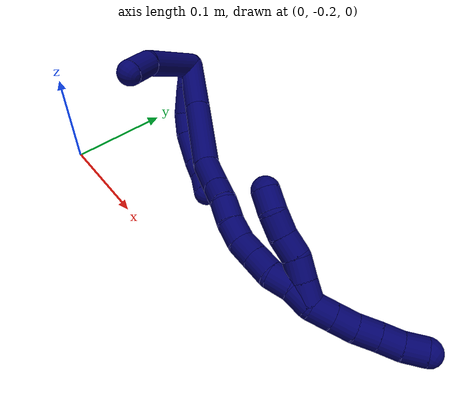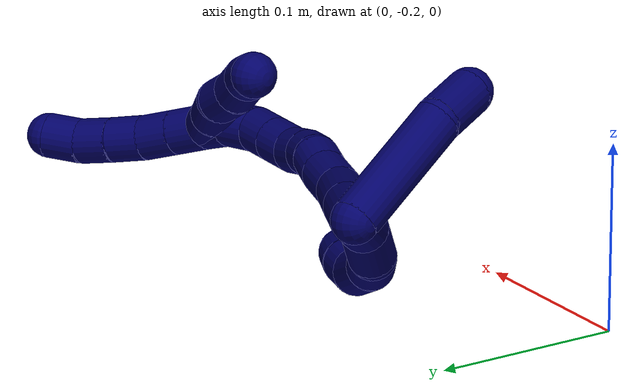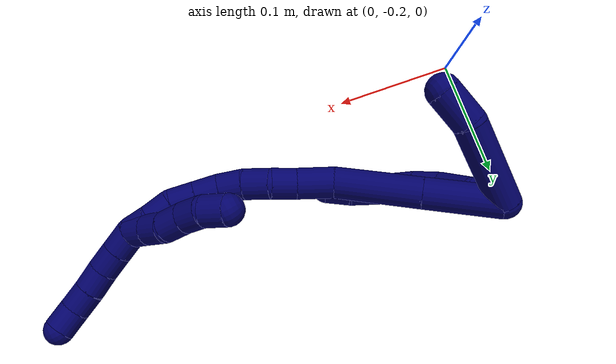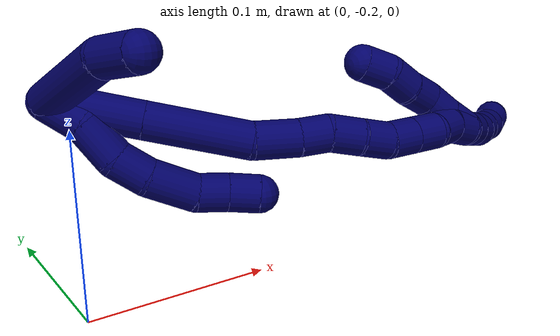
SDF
<sdf version="1.7">
 <world name="default">
  <model name="7">
   <static>0</static>
   <link name="7">
    <collision name="collision-cylinder-e_1_2_8">
     <pose>0.001255 -0.01091 0.007353 0.977749 0.095088 0.050609</pose>
     <geometry><cylinder><radius>0.0125</radius><length>0.026432</length></cylinder></geometry>
     <surface>
      <friction><ode><mu>1.16</mu><mu2>1.16</mu2><slip1>0</slip1><slip2>0</slip2></ode></friction>
      <contact><ode><kp>1e+06</kp><kd>1</kd><max_vel>0</max_vel><min_depth>0.001</min_depth></ode></contact>
     </surface>
    </collision>
    <visual name="visual-cylinder-e_1_2_8">
     <pose>0.001255 -0.01091 0.007353 0.977749 0.095088 0.050609</pose>
     <geometry><cylinder><radius>0.0125</radius><length>0.026432</length></cylinder></geometry>
     <material><ambient>0.003922 0 0.403922 1</ambient></material>
    </visual>
    <collision name="collision-cylinder-e_2_8_9">
     <pose>0.008271 -0.03323 0.02059 1.09468 0.421818 0.259492</pose>
     <geometry><cylinder><radius>0.0125</radius><length>0.028145</length></cylinder></geometry>
     <surface>
      <friction><ode><mu>1.16</mu><mu2>1.16</mu2><slip1>0</slip1><slip2>0</slip2></ode></friction>
      <contact><ode><kp>1e+06</kp><kd>1</kd><max_vel>0</max_vel><min_depth>0.001</min_depth></ode></contact>
     </surface>
    </collision>
    <visual name="visual-cylinder-e_2_8_9">
     <pose>0.008271 -0.03323 0.02059 1.09468 0.421818 0.259492</pose>
     <geometry><cylinder><radius>0.0125</radius><length>0.028145</length></cylinder></geometry>
     <material><ambient>0.003922 0 0.403922 1</ambient></material>
    </visual>
    <collision name="collision-cylinder-e_3_9_10">
     <pose>0.016535 -0.052453 0.034034 0.801766 0.226291 0.096247</pose>
     <geometry><cylinder><radius>0.0125</radius><length>0.022308</length></cylinder></geometry>
     <surface>
      <friction><ode><mu>1.16</mu><mu2>1.16</mu2><slip1>0</slip1><slip2>0</slip2></ode></friction>
      <contact><ode><kp>1e+06</kp><kd>1</kd><max_vel>0</max_vel><min_depth>0.001</min_depth></ode></contact>
     </surface>
    </collision>
    <visual name="visual-cylinder-e_3_9_10">
     <pose>0.016535 -0.052453 0.034034 0.801766 0.226291 0.096247</pose>
     <geometry><cylinder><radius>0.0125</radius><length>0.022308</length></cylinder></geometry>
     <material><ambient>0.003922 0 0.403922 1</ambient></material>
    </visual>
    <collision name="collision-cylinder-e_4_10_11">
     <pose>0.021309 -0.069119 0.054995 0.583924 0.140455 0.042277</pose>
     <geometry><cylinder><radius>0.0125</radius><length>0.032447</length></cylinder></geometry>
     <surface>
      <friction><ode><mu>1.16</mu><mu2>1.16</mu2><slip1>0</slip1><slip2>0</slip2></ode></friction>
      <contact><ode><kp>1e+06</kp><kd>1</kd><max_vel>0</max_vel><min_depth>0.001</min_depth></ode></contact>
     </surface>
    </collision>
    <visual name="visual-cylinder-e_4_10_11">
     <pose>0.021309 -0.069119 0.054995 0.583924 0.140455 0.042277</pose>
     <geometry><cylinder><radius>0.0125</radius><length>0.032447</length></cylinder></geometry>
     <material><ambient>0.003922 0 0.403922 1</ambient></material>
    </visual>
    <collision name="collision-cylinder-e_5_11_12">
     <pose>0.021899 -0.082218 0.077436 0.438849 -0.166796 -0.03728</pose>
     <geometry><cylinder><radius>0.0125</radius><length>0.020251</length></cylinder></geometry>
     <surface>
      <friction><ode><mu>1.16</mu><mu2>1.16</mu2><slip1>0</slip1><slip2>0</slip2></ode></friction>
      <contact><ode><kp>1e+06</kp><kd>1</kd><max_vel>0</max_vel><min_depth>0.001</min_depth></ode></contact>
     </surface>
    </collision>
    <visual name="visual-cylinder-e_5_11_12">
     <pose>0.021899 -0.082218 0.077436 0.438849 -0.166796 -0.03728</pose>
     <geometry><cylinder><radius>0.0125</radius><length>0.020251</length></cylinder></geometry>
     <material><ambient>0.003922 0 0.403922 1</ambient></material>
    </visual>
    <collision name="collision-cylinder-e_6_12_6">
     <pose>0.018152 -0.091956 0.094826 0.582081 -0.203776 -0.061233</pose>
     <geometry><cylinder><radius>0.0125</radius><length>0.020417</length></cylinder></geometry>
     <surface>
      <friction><ode><mu>1.16</mu><mu2>1.16</mu2><slip1>0</slip1><slip2>0</slip2></ode></friction>
      <contact><ode><kp>1e+06</kp><kd>1</kd><max_vel>0</max_vel><min_depth>0.001</min_depth></ode></contact>
     </surface>
    </collision>
    <visual name="visual-cylinder-e_6_12_6">
     <pose>0.018152 -0.091956 0.094826 0.582081 -0.203776 -0.061233</pose>
     <geometry><cylinder><radius>0.0125</radius><length>0.020417</length></cylinder></geometry>
     <material><ambient>0.003922 0 0.403922 1</ambient></material>
    </visual>
    <collision name="collision-cylinder-e_1_2_13">
     <pose>-0.030049 -0.018278 0.002309 1.44514 -1.02079 -0.917036</pose>
     <geometry><cylinder><radius>0.0125</radius><length>0.070495</length></cylinder></geometry>
     <surface>
      <friction><ode><mu>1.16</mu><mu2>1.16</mu2><slip1>0</slip1><slip2>0</slip2></ode></friction>
      <contact><ode><kp>1e+06</kp><kd>1</kd><max_vel>0</max_vel><min_depth>0.001</min_depth></ode></contact>
     </surface>
    </collision>
    <visual name="visual-cylinder-e_1_2_13">
     <pose>-0.030049 -0.018278 0.002309 1.44514 -1.02079 -0.917036</pose>
     <geometry><cylinder><radius>0.0125</radius><length>0.070495</length></cylinder></geometry>
     <material><ambient>0.003922 0 0.403922 1</ambient></material>
    </visual>
    <collision name="collision-cylinder-e_2_13_5">
     <pose>-0.069704 -0.047209 0.008069 1.25746 -0.709018 -0.525856</pose>
     <geometry><cylinder><radius>0.0125</radius><length>0.029505</length></cylinder></geometry>
     <surface>
      <friction><ode><mu>1.16</mu><mu2>1.16</mu2><slip1>0</slip1><slip2>0</slip2></ode></friction>
      <contact><ode><kp>1e+06</kp><kd>1</kd><max_vel>0</max_vel><min_depth>0.001</min_depth></ode></contact>
     </surface>
    </collision>
    <visual name="visual-cylinder-e_2_13_5">
     <pose>-0.069704 -0.047209 0.008069 1.25746 -0.709018 -0.525856</pose>
     <geometry><cylinder><radius>0.0125</radius><length>0.029505</length></cylinder></geometry>
     <material><ambient>0.003922 0 0.403922 1</ambient></material>
    </visual>
    <collision name="collision-cylinder-e_1_2_14">
     <pose>-0.003101 -0.018087 0.02306 0.665129 -0.105431 -0.036445</pose>
     <geometry><cylinder><radius>0.0125</radius><length>0.058942</length></cylinder></geometry>
     <surface>
      <friction><ode><mu>1.16</mu><mu2>1.16</mu2><slip1>0</slip1><slip2>0</slip2></ode></friction>
      <contact><ode><kp>1e+06</kp><kd>1</kd><max_vel>0</max_vel><min_depth>0.001</min_depth></ode></contact>
     </surface>
    </collision>
    <visual name="visual-cylinder-e_1_2_14">
     <pose>-0.003101 -0.018087 0.02306 0.665129 -0.105431 -0.036445</pose>
     <geometry><cylinder><radius>0.0125</radius><length>0.058942</length></cylinder></geometry>
     <material><ambient>0.003922 0 0.403922 1</ambient></material>
    </visual>
    <collision name="collision-cylinder-e_2_14_15">
     <pose>-0.009968 -0.057183 0.072725 0.668407 -0.11061 -0.038441</pose>
     <geometry><cylinder><radius>0.0125</radius><length>0.068215</length></cylinder></geometry>
     <surface>
      <friction><ode><mu>1.16</mu><mu2>1.16</mu2><slip1>0</slip1><slip2>0</slip2></ode></friction>
      <contact><ode><kp>1e+06</kp><kd>1</kd><max_vel>0</max_vel><min_depth>0.001</min_depth></ode></contact>
     </surface>
    </collision>
    <visual name="visual-cylinder-e_2_14_15">
     <pose>-0.009968 -0.057183 0.072725 0.668407 -0.11061 -0.038441</pose>
     <geometry><cylinder><radius>0.0125</radius><length>0.068215</length></cylinder></geometry>
     <material><ambient>0.003922 0 0.403922 1</ambient></material>
    </visual>
    <collision name="collision-cylinder-e_3_15_16">
     <pose>-0.017049 -0.084009 0.112821 0.407113 -0.222007 -0.046007</pose>
     <geometry><cylinder><radius>0.0125</radius><length>0.030125</length></cylinder></geometry>
     <surface>
      <friction><ode><mu>1.16</mu><mu2>1.16</mu2><slip1>0</slip1><slip2>0</slip2></ode></friction>
      <contact><ode><kp>1e+06</kp><kd>1</kd><max_vel>0</max_vel><min_depth>0.001</min_depth></ode></contact>
     </surface>
    </collision>
    <visual name="visual-cylinder-e_3_15_16">
     <pose>-0.017049 -0.084009 0.112821 0.407113 -0.222007 -0.046007</pose>
     <geometry><cylinder><radius>0.0125</radius><length>0.030125</length></cylinder></geometry>
     <material><ambient>0.003922 0 0.403922 1</ambient></material>
    </visual>
    <collision name="collision-cylinder-e_4_16_17">
     <pose>-0.023581 -0.09336 0.135233 0.377106 -0.32332 -0.062219</pose>
     <geometry><cylinder><radius>0.0125</radius><length>0.020236</length></cylinder></geometry>
     <surface>
      <friction><ode><mu>1.16</mu><mu2>1.16</mu2><slip1>0</slip1><slip2>0</slip2></ode></friction>
      <contact><ode><kp>1e+06</kp><kd>1</kd><max_vel>0</max_vel><min_depth>0.001</min_depth></ode></contact>
     </surface>
    </collision>
    <visual name="visual-cylinder-e_4_16_17">
     <pose>-0.023581 -0.09336 0.135233 0.377106 -0.32332 -0.062219</pose>
     <geometry><cylinder><radius>0.0125</radius><length>0.020236</length></cylinder></geometry>
     <material><ambient>0.003922 0 0.403922 1</ambient></material>
    </visual>
    <collision name="collision-cylinder-e_5_17_18">
     <pose>-0.027576 -0.102323 0.153478 0.52732 -0.072203 -0.019499</pose>
     <geometry><cylinder><radius>0.0125</radius><length>0.021638</length></cylinder></geometry>
     <surface>
      <friction><ode><mu>1.16</mu><mu2>1.16</mu2><slip1>0</slip1><slip2>0</slip2></ode></friction>
      <contact><ode><kp>1e+06</kp><kd>1</kd><max_vel>0</max_vel><min_depth>0.001</min_depth></ode></contact>
     </surface>
    </collision>
    <visual name="visual-cylinder-e_5_17_18">
     <pose>-0.027576 -0.102323 0.153478 0.52732 -0.072203 -0.019499</pose>
     <geometry><cylinder><radius>0.0125</radius><length>0.021638</length></cylinder></geometry>
     <material><ambient>0.003922 0 0.403922 1</ambient></material>
    </visual>
    <collision name="collision-cylinder-e_6_18_19">
     <pose>-0.028078 -0.111631 0.172244 0.389747 0.027276 0.005384</pose>
     <geometry><cylinder><radius>0.0125</radius><length>0.020421</length></cylinder></geometry>
     <surface>
      <friction><ode><mu>1.16</mu><mu2>1.16</mu2><slip1>0</slip1><slip2>0</slip2></ode></friction>
      <contact><ode><kp>1e+06</kp><kd>1</kd><max_vel>0</max_vel><min_depth>0.001</min_depth></ode></contact>
     </surface>
    </collision>
    <visual name="visual-cylinder-e_6_18_19">
     <pose>-0.028078 -0.111631 0.172244 0.389747 0.027276 0.005384</pose>
     <geometry><cylinder><radius>0.0125</radius><length>0.020421</length></cylinder></geometry>
     <material><ambient>0.003922 0 0.403922 1</ambient></material>
    </visual>
    <collision name="collision-cylinder-e_7_19_20">
     <pose>-0.029026 -0.116855 0.191545 0.135673 -0.122609 -0.008341</pose>
     <geometry><cylinder><radius>0.0125</radius><length>0.020052</length></cylinder></geometry>
     <surface>
      <friction><ode><mu>1.16</mu><mu2>1.16</mu2><slip1>0</slip1><slip2>0</slip2></ode></friction>
      <contact><ode><kp>1e+06</kp><kd>1</kd><max_vel>0</max_vel><min_depth>0.001</min_depth></ode></contact>
     </surface>
    </collision>
    <visual name="visual-cylinder-e_7_19_20">
     <pose>-0.029026 -0.116855 0.191545 0.135673 -0.122609 -0.008341</pose>
     <geometry><cylinder><radius>0.0125</radius><length>0.020052</length></cylinder></geometry>
     <material><ambient>0.003922 0 0.403922 1</ambient></material>
    </visual>
    <collision name="collision-cylinder-e_8_20_21">
     <pose>-0.031511 -0.119579 0.211392 0.137021 -0.124273 -0.008538</pose>
     <geometry><cylinder><radius>0.0125</radius><length>0.02032</length></cylinder></geometry>
     <surface>
      <friction><ode><mu>1.16</mu><mu2>1.16</mu2><slip1>0</slip1><slip2>0</slip2></ode></friction>
      <contact><ode><kp>1e+06</kp><kd>1</kd><max_vel>0</max_vel><min_depth>0.001</min_depth></ode></contact>
     </surface>
    </collision>
    <visual name="visual-cylinder-e_8_20_21">
     <pose>-0.031511 -0.119579 0.211392 0.137021 -0.124273 -0.008538</pose>
     <geometry><cylinder><radius>0.0125</radius><length>0.02032</length></cylinder></geometry>
     <material><ambient>0.003922 0 0.403922 1</ambient></material>
    </visual>
    <collision name="collision-cylinder-e_9_21_22">
     <pose>-0.032046 -0.119564 0.231261 -0.139869 0.072506 -0.005081</pose>
     <geometry><cylinder><radius>0.0125</radius><length>0.020011</length></cylinder></geometry>
     <surface>
      <friction><ode><mu>1.16</mu><mu2>1.16</mu2><slip1>0</slip1><slip2>0</slip2></ode></friction>
      <contact><ode><kp>1e+06</kp><kd>1</kd><max_vel>0</max_vel><min_depth>0.001</min_depth></ode></contact>
     </surface>
    </collision>
    <visual name="visual-cylinder-e_9_21_22">
     <pose>-0.032046 -0.119564 0.231261 -0.139869 0.072506 -0.005081</pose>
     <geometry><cylinder><radius>0.0125</radius><length>0.020011</length></cylinder></geometry>
     <material><ambient>0.003922 0 0.403922 1</ambient></material>
    </visual>
    <collision name="collision-cylinder-e_10_22_1">
     <pose>-0.028739 -0.119316 0.250756 0.118296 0.260669 0.015524</pose>
     <geometry><cylinder><radius>0.0125</radius><length>0.020038</length></cylinder></geometry>
     <surface>
      <friction><ode><mu>1.16</mu><mu2>1.16</mu2><slip1>0</slip1><slip2>0</slip2></ode></friction>
      <contact><ode><kp>1e+06</kp><kd>1</kd><max_vel>0</max_vel><min_depth>0.001</min_depth></ode></contact>
     </surface>
    </collision>
    <visual name="visual-cylinder-e_10_22_1">
     <pose>-0.028739 -0.119316 0.250756 0.118296 0.260669 0.015524</pose>
     <geometry><cylinder><radius>0.0125</radius><length>0.020038</length></cylinder></geometry>
     <material><ambient>0.003922 0 0.403922 1</ambient></material>
    </visual>
    <collision name="collision-cylinder-e_1_1_23">
     <pose>-0.029503 -0.114772 0.252854 -2.49381 -0.341229 0.948302</pose>
     <geometry><cylinder><radius>0.0125</radius><length>0.02</length></cylinder></geometry>
     <surface>
      <friction><ode><mu>1.16</mu><mu2>1.16</mu2><slip1>0</slip1><slip2>0</slip2></ode></friction>
      <contact><ode><kp>1e+06</kp><kd>1</kd><max_vel>0</max_vel><min_depth>0.001</min_depth></ode></contact>
     </surface>
    </collision>
    <visual name="visual-cylinder-e_1_1_23">
     <pose>-0.029503 -0.114772 0.252854 -2.49381 -0.341229 0.948302</pose>
     <geometry><cylinder><radius>0.0125</radius><length>0.02</length></cylinder></geometry>
     <material><ambient>0.003922 0 0.403922 1</ambient></material>
    </visual>
    <collision name="collision-cylinder-e_2_23_24">
     <pose>-0.036658 -0.103184 0.238222 -2.44938 -0.390731 1.00375</pose>
     <geometry><cylinder><radius>0.0125</radius><length>0.02</length></cylinder></geometry>
     <surface>
      <friction><ode><mu>1.16</mu><mu2>1.16</mu2><slip1>0</slip1><slip2>0</slip2></ode></friction>
      <contact><ode><kp>1e+06</kp><kd>1</kd><max_vel>0</max_vel><min_depth>0.001</min_depth></ode></contact>
     </surface>
    </collision>
    <visual name="visual-cylinder-e_2_23_24">
     <pose>-0.036658 -0.103184 0.238222 -2.44938 -0.390731 1.00375</pose>
     <geometry><cylinder><radius>0.0125</radius><length>0.02</length></cylinder></geometry>
     <material><ambient>0.003922 0 0.403922 1</ambient></material>
    </visual>
    <collision name="collision-cylinder-e_3_24_25">
     <pose>-0.044085 -0.094062 0.222355 -2.78881 -0.370177 1.61998</pose>
     <geometry><cylinder><radius>0.0125</radius><length>0.02</length></cylinder></geometry>
     <surface>
      <friction><ode><mu>1.16</mu><mu2>1.16</mu2><slip1>0</slip1><slip2>0</slip2></ode></friction>
      <contact><ode><kp>1e+06</kp><kd>1</kd><max_vel>0</max_vel><min_depth>0.001</min_depth></ode></contact>
     </surface>
    </collision>
    <visual name="visual-cylinder-e_3_24_25">
     <pose>-0.044085 -0.094062 0.222355 -2.78881 -0.370177 1.61998</pose>
     <geometry><cylinder><radius>0.0125</radius><length>0.02</length></cylinder></geometry>
     <material><ambient>0.003922 0 0.403922 1</ambient></material>
    </visual>
    <collision name="collision-cylinder-e_4_25_26">
     <pose>-0.051828 -0.086123 0.205813 -2.59726 -0.425212 1.31671</pose>
     <geometry><cylinder><radius>0.0125</radius><length>0.02</length></cylinder></geometry>
     <surface>
      <friction><ode><mu>1.16</mu><mu2>1.16</mu2><slip1>0</slip1><slip2>0</slip2></ode></friction>
      <contact><ode><kp>1e+06</kp><kd>1</kd><max_vel>0</max_vel><min_depth>0.001</min_depth></ode></contact>
     </surface>
    </collision>
    <visual name="visual-cylinder-e_4_25_26">
     <pose>-0.051828 -0.086123 0.205813 -2.59726 -0.425212 1.31671</pose>
     <geometry><cylinder><radius>0.0125</radius><length>0.02</length></cylinder></geometry>
     <material><ambient>0.003922 0 0.403922 1</ambient></material>
    </visual>
    <collision name="collision-cylinder-e_5_26_4">
     <pose>-0.056893 -0.075905 0.189723 -2.55617 -0.094152 0.310133</pose>
     <geometry><cylinder><radius>0.0125</radius><length>0.02</length></cylinder></geometry>
     <surface>
      <friction><ode><mu>1.16</mu><mu2>1.16</mu2><slip1>0</slip1><slip2>0</slip2></ode></friction>
      <contact><ode><kp>1e+06</kp><kd>1</kd><max_vel>0</max_vel><min_depth>0.001</min_depth></ode></contact>
     </surface>
    </collision>
    <visual name="visual-cylinder-e_5_26_4">
     <pose>-0.056893 -0.075905 0.189723 -2.55617 -0.094152 0.310133</pose>
     <geometry><cylinder><radius>0.0125</radius><length>0.02</length></cylinder></geometry>
     <material><ambient>0.003922 0 0.403922 1</ambient></material>
    </visual>
    <collision name="collision-cylinder-e_1_1_27">
     <pose>-0.022213 -0.118501 0.269347 -0.214654 0.405431 -0.044283</pose>
     <geometry><cylinder><radius>0.0125</radius><length>0.02</length></cylinder></geometry>
     <surface>
      <friction><ode><mu>1.16</mu><mu2>1.16</mu2><slip1>0</slip1><slip2>0</slip2></ode></friction>
      <contact><ode><kp>1e+06</kp><kd>1</kd><max_vel>0</max_vel><min_depth>0.001</min_depth></ode></contact>
     </surface>
    </collision>
    <visual name="visual-cylinder-e_1_1_27">
     <pose>-0.022213 -0.118501 0.269347 -0.214654 0.405431 -0.044283</pose>
     <geometry><cylinder><radius>0.0125</radius><length>0.02</length></cylinder></geometry>
     <material><ambient>0.003922 0 0.403922 1</ambient></material>
    </visual>
    <collision name="collision-cylinder-e_2_27_28">
     <pose>-0.01432 -0.114541 0.287292 -0.219705 0.405845 -0.04538</pose>
     <geometry><cylinder><radius>0.0125</radius><length>0.02</length></cylinder></geometry>
     <surface>
      <friction><ode><mu>1.16</mu><mu2>1.16</mu2><slip1>0</slip1><slip2>0</slip2></ode></friction>
      <contact><ode><kp>1e+06</kp><kd>1</kd><max_vel>0</max_vel><min_depth>0.001</min_depth></ode></contact>
     </surface>
    </collision>
    <visual name="visual-cylinder-e_2_27_28">
     <pose>-0.01432 -0.114541 0.287292 -0.219705 0.405845 -0.04538</pose>
     <geometry><cylinder><radius>0.0125</radius><length>0.02</length></cylinder></geometry>
     <material><ambient>0.003922 0 0.403922 1</ambient></material>
    </visual>
    <collision name="collision-cylinder-e_3_28_29">
     <pose>-0.007033 -0.109299 0.305111 -0.350797 0.340507 -0.060916</pose>
     <geometry><cylinder><radius>0.0125</radius><length>0.02</length></cylinder></geometry>
     <surface>
      <friction><ode><mu>1.16</mu><mu2>1.16</mu2><slip1>0</slip1><slip2>0</slip2></ode></friction>
      <contact><ode><kp>1e+06</kp><kd>1</kd><max_vel>0</max_vel><min_depth>0.001</min_depth></ode></contact>
     </surface>
    </collision>
    <visual name="visual-cylinder-e_3_28_29">
     <pose>-0.007033 -0.109299 0.305111 -0.350797 0.340507 -0.060916</pose>
     <geometry><cylinder><radius>0.0125</radius><length>0.02</length></cylinder></geometry>
     <material><ambient>0.003922 0 0.403922 1</ambient></material>
    </visual>
    <collision name="collision-cylinder-e_4_29_30">
     <pose>-0.000702 -0.103187 0.323062 -0.305836 0.303805 -0.047177</pose>
     <geometry><cylinder><radius>0.0125</radius><length>0.02</length></cylinder></geometry>
     <surface>
      <friction><ode><mu>1.16</mu><mu2>1.16</mu2><slip1>0</slip1><slip2>0</slip2></ode></friction>
      <contact><ode><kp>1e+06</kp><kd>1</kd><max_vel>0</max_vel><min_depth>0.001</min_depth></ode></contact>
     </surface>
    </collision>
    <visual name="visual-cylinder-e_4_29_30">
     <pose>-0.000702 -0.103187 0.323062 -0.305836 0.303805 -0.047177</pose>
     <geometry><cylinder><radius>0.0125</radius><length>0.02</length></cylinder></geometry>
     <material><ambient>0.003922 0 0.403922 1</ambient></material>
    </visual>
    <collision name="collision-cylinder-e_5_30_3">
     <pose>0.003553 -0.095875 0.341032 -0.464031 0.126672 -0.029967</pose>
     <geometry><cylinder><radius>0.0125</radius><length>0.02</length></cylinder></geometry>
     <surface>
      <friction><ode><mu>1.16</mu><mu2>1.16</mu2><slip1>0</slip1><slip2>0</slip2></ode></friction>
      <contact><ode><kp>1e+06</kp><kd>1</kd><max_vel>0</max_vel><min_depth>0.001</min_depth></ode></contact>
     </surface>
    </collision>
    <visual name="visual-cylinder-e_5_30_3">
     <pose>0.003553 -0.095875 0.341032 -0.464031 0.126672 -0.029967</pose>
     <geometry><cylinder><radius>0.0125</radius><length>0.02</length></cylinder></geometry>
     <material><ambient>0.003922 0 0.403922 1</ambient></material>
    </visual>
    <collision name="collision-sphere-3">
     <pose>0.004817 -0.091435 0.349903 0 -0 0</pose>
     <geometry><sphere><radius>0.0125</radius></sphere></geometry>
     <surface>
      <friction><ode><mu>1.16</mu><mu2>1.16</mu2><slip1>0</slip1><slip2>0</slip2></ode></friction>
      <contact><ode><kp>1e+06</kp><kd>1</kd><max_vel>0</max_vel><min_depth>0.001</min_depth></ode></contact>
     </surface>
    </collision>
    <visual name="visual-sphere-3">
     <pose>0.004817 -0.091435 0.349903 0 -0 0</pose>
     <geometry><sphere><radius>0.0125</radius></sphere></geometry>
     <material><ambient>0.003922 0 0.403922 1</ambient></material>
    </visual>
    <collision name="collision-sphere-30">
     <pose>0.00229 -0.100314 0.332161 0 -0 0</pose>
     <geometry><sphere><radius>0.0125</radius></sphere></geometry>
     <surface>
      <friction><ode><mu>1.16</mu><mu2>1.16</mu2><slip1>0</slip1><slip2>0</slip2></ode></friction>
      <contact><ode><kp>1e+06</kp><kd>1</kd><max_vel>0</max_vel><min_depth>0.001</min_depth></ode></contact>
     </surface>
    </collision>
    <visual name="visual-sphere-30">
     <pose>0.00229 -0.100314 0.332161 0 -0 0</pose>
     <geometry><sphere><radius>0.0125</radius></sphere></geometry>
     <material><ambient>0.003922 0 0.403922 1</ambient></material>
    </visual>
    <collision name="collision-sphere-29">
     <pose>-0.003693 -0.10606 0.313963 0 -0 0</pose>
     <geometry><sphere><radius>0.0125</radius></sphere></geometry>
     <surface>
      <friction><ode><mu>1.16</mu><mu2>1.16</mu2><slip1>0</slip1><slip2>0</slip2></ode></friction>
      <contact><ode><kp>1e+06</kp><kd>1</kd><max_vel>0</max_vel><min_depth>0.001</min_depth></ode></contact>
     </surface>
    </collision>
    <visual name="visual-sphere-29">
     <pose>-0.003693 -0.10606 0.313963 0 -0 0</pose>
     <geometry><sphere><radius>0.0125</radius></sphere></geometry>
     <material><ambient>0.003922 0 0.403922 1</ambient></material>
    </visual>
    <collision name="collision-sphere-28">
     <pose>-0.010373 -0.112539 0.296259 0 -0 0</pose>
     <geometry><sphere><radius>0.0125</radius></sphere></geometry>
     <surface>
      <friction><ode><mu>1.16</mu><mu2>1.16</mu2><slip1>0</slip1><slip2>0</slip2></ode></friction>
      <contact><ode><kp>1e+06</kp><kd>1</kd><max_vel>0</max_vel><min_depth>0.001</min_depth></ode></contact>
     </surface>
    </collision>
    <visual name="visual-sphere-28">
     <pose>-0.010373 -0.112539 0.296259 0 -0 0</pose>
     <geometry><sphere><radius>0.0125</radius></sphere></geometry>
     <material><ambient>0.003922 0 0.403922 1</ambient></material>
    </visual>
    <collision name="collision-sphere-27">
     <pose>-0.018268 -0.116543 0.278325 0 -0 0</pose>
     <geometry><sphere><radius>0.0125</radius></sphere></geometry>
     <surface>
      <friction><ode><mu>1.16</mu><mu2>1.16</mu2><slip1>0</slip1><slip2>0</slip2></ode></friction>
      <contact><ode><kp>1e+06</kp><kd>1</kd><max_vel>0</max_vel><min_depth>0.001</min_depth></ode></contact>
     </surface>
    </collision>
    <visual name="visual-sphere-27">
     <pose>-0.018268 -0.116543 0.278325 0 -0 0</pose>
     <geometry><sphere><radius>0.0125</radius></sphere></geometry>
     <material><ambient>0.003922 0 0.403922 1</ambient></material>
    </visual>
    <collision name="collision-sphere-4">
     <pose>-0.057833 -0.070404 0.181425 0 -0 0</pose>
     <geometry><sphere><radius>0.0125</radius></sphere></geometry>
     <surface>
      <friction><ode><mu>1.16</mu><mu2>1.16</mu2><slip1>0</slip1><slip2>0</slip2></ode></friction>
      <contact><ode><kp>1e+06</kp><kd>1</kd><max_vel>0</max_vel><min_depth>0.001</min_depth></ode></contact>
     </surface>
    </collision>
    <visual name="visual-sphere-4">
     <pose>-0.057833 -0.070404 0.181425 0 -0 0</pose>
     <geometry><sphere><radius>0.0125</radius></sphere></geometry>
     <material><ambient>0.003922 0 0.403922 1</ambient></material>
    </visual>
    <collision name="collision-sphere-26">
     <pose>-0.055953 -0.081406 0.19802 0 -0 0</pose>
     <geometry><sphere><radius>0.0125</radius></sphere></geometry>
     <surface>
      <friction><ode><mu>1.16</mu><mu2>1.16</mu2><slip1>0</slip1><slip2>0</slip2></ode></friction>
      <contact><ode><kp>1e+06</kp><kd>1</kd><max_vel>0</max_vel><min_depth>0.001</min_depth></ode></contact>
     </surface>
    </collision>
    <visual name="visual-sphere-26">
     <pose>-0.055953 -0.081406 0.19802 0 -0 0</pose>
     <geometry><sphere><radius>0.0125</radius></sphere></geometry>
     <material><ambient>0.003922 0 0.403922 1</ambient></material>
    </visual>
    <collision name="collision-sphere-25">
     <pose>-0.047703 -0.090841 0.213606 0 -0 0</pose>
     <geometry><sphere><radius>0.0125</radius></sphere></geometry>
     <surface>
      <friction><ode><mu>1.16</mu><mu2>1.16</mu2><slip1>0</slip1><slip2>0</slip2></ode></friction>
      <contact><ode><kp>1e+06</kp><kd>1</kd><max_vel>0</max_vel><min_depth>0.001</min_depth></ode></contact>
     </surface>
    </collision>
    <visual name="visual-sphere-25">
     <pose>-0.047703 -0.090841 0.213606 0 -0 0</pose>
     <geometry><sphere><radius>0.0125</radius></sphere></geometry>
     <material><ambient>0.003922 0 0.403922 1</ambient></material>
    </visual>
    <collision name="collision-sphere-24">
     <pose>-0.040467 -0.097283 0.231103 0 -0 0</pose>
     <geometry><sphere><radius>0.0125</radius></sphere></geometry>
     <surface>
      <friction><ode><mu>1.16</mu><mu2>1.16</mu2><slip1>0</slip1><slip2>0</slip2></ode></friction>
      <contact><ode><kp>1e+06</kp><kd>1</kd><max_vel>0</max_vel><min_depth>0.001</min_depth></ode></contact>
     </surface>
    </collision>
    <visual name="visual-sphere-24">
     <pose>-0.040467 -0.097283 0.231103 0 -0 0</pose>
     <geometry><sphere><radius>0.0125</radius></sphere></geometry>
     <material><ambient>0.003922 0 0.403922 1</ambient></material>
    </visual>
    <collision name="collision-sphere-23">
     <pose>-0.03285 -0.109086 0.24534 0 -0 0</pose>
     <geometry><sphere><radius>0.0125</radius></sphere></geometry>
     <surface>
      <friction><ode><mu>1.16</mu><mu2>1.16</mu2><slip1>0</slip1><slip2>0</slip2></ode></friction>
      <contact><ode><kp>1e+06</kp><kd>1</kd><max_vel>0</max_vel><min_depth>0.001</min_depth></ode></contact>
     </surface>
    </collision>
    <visual name="visual-sphere-23">
     <pose>-0.03285 -0.109086 0.24534 0 -0 0</pose>
     <geometry><sphere><radius>0.0125</radius></sphere></geometry>
     <material><ambient>0.003922 0 0.403922 1</ambient></material>
    </visual>
    <collision name="collision-sphere-1">
     <pose>-0.026157 -0.120458 0.260369 0 -0 0</pose>
     <geometry><sphere><radius>0.0125</radius></sphere></geometry>
     <surface>
      <friction><ode><mu>1.16</mu><mu2>1.16</mu2><slip1>0</slip1><slip2>0</slip2></ode></friction>
      <contact><ode><kp>1e+06</kp><kd>1</kd><max_vel>0</max_vel><min_depth>0.001</min_depth></ode></contact>
     </surface>
    </collision>
    <visual name="visual-sphere-1">
     <pose>-0.026157 -0.120458 0.260369 0 -0 0</pose>
     <geometry><sphere><radius>0.0125</radius></sphere></geometry>
     <material><ambient>0.003922 0 0.403922 1</ambient></material>
    </visual>
    <collision name="collision-sphere-22">
     <pose>-0.031321 -0.118173 0.241143 0 -0 0</pose>
     <geometry><sphere><radius>0.0125</radius></sphere></geometry>
     <surface>
      <friction><ode><mu>1.16</mu><mu2>1.16</mu2><slip1>0</slip1><slip2>0</slip2></ode></friction>
      <contact><ode><kp>1e+06</kp><kd>1</kd><max_vel>0</max_vel><min_depth>0.001</min_depth></ode></contact>
     </surface>
    </collision>
    <visual name="visual-sphere-22">
     <pose>-0.031321 -0.118173 0.241143 0 -0 0</pose>
     <geometry><sphere><radius>0.0125</radius></sphere></geometry>
     <material><ambient>0.003922 0 0.403922 1</ambient></material>
    </visual>
    <collision name="collision-sphere-21">
     <pose>-0.032771 -0.120956 0.221379 0 -0 0</pose>
     <geometry><sphere><radius>0.0125</radius></sphere></geometry>
     <surface>
      <friction><ode><mu>1.16</mu><mu2>1.16</mu2><slip1>0</slip1><slip2>0</slip2></ode></friction>
      <contact><ode><kp>1e+06</kp><kd>1</kd><max_vel>0</max_vel><min_depth>0.001</min_depth></ode></contact>
     </surface>
    </collision>
    <visual name="visual-sphere-21">
     <pose>-0.032771 -0.120956 0.221379 0 -0 0</pose>
     <geometry><sphere><radius>0.0125</radius></sphere></geometry>
     <material><ambient>0.003922 0 0.403922 1</ambient></material>
    </visual>
    <collision name="collision-sphere-12">
     <pose>0.020218 -0.08646 0.086475 0 -0 0</pose>
     <geometry><sphere><radius>0.0125</radius></sphere></geometry>
     <surface>
      <friction><ode><mu>1.16</mu><mu2>1.16</mu2><slip1>0</slip1><slip2>0</slip2></ode></friction>
      <contact><ode><kp>1e+06</kp><kd>1</kd><max_vel>0</max_vel><min_depth>0.001</min_depth></ode></contact>
     </surface>
    </collision>
    <visual name="visual-sphere-12">
     <pose>0.020218 -0.08646 0.086475 0 -0 0</pose>
     <geometry><sphere><radius>0.0125</radius></sphere></geometry>
     <material><ambient>0.003922 0 0.403922 1</ambient></material>
    </visual>
    <collision name="collision-sphere-11">
     <pose>0.02358 -0.077975 0.068397 0 -0 0</pose>
     <geometry><sphere><radius>0.0125</radius></sphere></geometry>
     <surface>
      <friction><ode><mu>1.16</mu><mu2>1.16</mu2><slip1>0</slip1><slip2>0</slip2></ode></friction>
      <contact><ode><kp>1e+06</kp><kd>1</kd><max_vel>0</max_vel><min_depth>0.001</min_depth></ode></contact>
     </surface>
    </collision>
    <visual name="visual-sphere-11">
     <pose>0.02358 -0.077975 0.068397 0 -0 0</pose>
     <geometry><sphere><radius>0.0125</radius></sphere></geometry>
     <material><ambient>0.003922 0 0.403922 1</ambient></material>
    </visual>
    <collision name="collision-sphere-10">
     <pose>0.019038 -0.060263 0.041593 0 -0 0</pose>
     <geometry><sphere><radius>0.0125</radius></sphere></geometry>
     <surface>
      <friction><ode><mu>1.16</mu><mu2>1.16</mu2><slip1>0</slip1><slip2>0</slip2></ode></friction>
      <contact><ode><kp>1e+06</kp><kd>1</kd><max_vel>0</max_vel><min_depth>0.001</min_depth></ode></contact>
     </surface>
    </collision>
    <visual name="visual-sphere-10">
     <pose>0.019038 -0.060263 0.041593 0 -0 0</pose>
     <geometry><sphere><radius>0.0125</radius></sphere></geometry>
     <material><ambient>0.003922 0 0.403922 1</ambient></material>
    </visual>
    <collision name="collision-sphere-9">
     <pose>0.014033 -0.044642 0.026475 0 -0 0</pose>
     <geometry><sphere><radius>0.0125</radius></sphere></geometry>
     <surface>
      <friction><ode><mu>1.16</mu><mu2>1.16</mu2><slip1>0</slip1><slip2>0</slip2></ode></friction>
      <contact><ode><kp>1e+06</kp><kd>1</kd><max_vel>0</max_vel><min_depth>0.001</min_depth></ode></contact>
     </surface>
    </collision>
    <visual name="visual-sphere-9">
     <pose>0.014033 -0.044642 0.026475 0 -0 0</pose>
     <geometry><sphere><radius>0.0125</radius></sphere></geometry>
     <material><ambient>0.003922 0 0.403922 1</ambient></material>
    </visual>
    <collision name="collision-sphere-2">
     <geometry><sphere><radius>0.0125</radius></sphere></geometry>
     <surface>
      <friction><ode><mu>1.16</mu><mu2>1.16</mu2><slip1>0</slip1><slip2>0</slip2></ode></friction>
      <contact><ode><kp>1e+06</kp><kd>1</kd><max_vel>0</max_vel><min_depth>0.001</min_depth></ode></contact>
     </surface>
    </collision>
    <visual name="visual-sphere-2">
     <geometry><sphere><radius>0.0125</radius></sphere></geometry>
     <material><ambient>0.003922 0 0.403922 1</ambient></material>
    </visual>
    <collision name="collision-sphere-19">
     <pose>-0.027799 -0.11551 0.181686 0 -0 0</pose>
     <geometry><sphere><radius>0.0125</radius></sphere></geometry>
     <surface>
      <friction><ode><mu>1.16</mu><mu2>1.16</mu2><slip1>0</slip1><slip2>0</slip2></ode></friction>
      <contact><ode><kp>1e+06</kp><kd>1</kd><max_vel>0</max_vel><min_depth>0.001</min_depth></ode></contact>
     </surface>
    </collision>
    <visual name="visual-sphere-19">
     <pose>-0.027799 -0.11551 0.181686 0 -0 0</pose>
     <geometry><sphere><radius>0.0125</radius></sphere></geometry>
     <material><ambient>0.003922 0 0.403922 1</ambient></material>
    </visual>
    <collision name="collision-sphere-8">
     <pose>0.00251 -0.021819 0.014706 0 -0 0</pose>
     <geometry><sphere><radius>0.0125</radius></sphere></geometry>
     <surface>
      <friction><ode><mu>1.16</mu><mu2>1.16</mu2><slip1>0</slip1><slip2>0</slip2></ode></friction>
      <contact><ode><kp>1e+06</kp><kd>1</kd><max_vel>0</max_vel><min_depth>0.001</min_depth></ode></contact>
     </surface>
    </collision>
    <visual name="visual-sphere-8">
     <pose>0.00251 -0.021819 0.014706 0 -0 0</pose>
     <geometry><sphere><radius>0.0125</radius></sphere></geometry>
     <material><ambient>0.003922 0 0.403922 1</ambient></material>
    </visual>
    <collision name="collision-sphere-6">
     <pose>0.016086 -0.097453 0.103177 0 -0 0</pose>
     <geometry><sphere><radius>0.0125</radius></sphere></geometry>
     <surface>
      <friction><ode><mu>1.16</mu><mu2>1.16</mu2><slip1>0</slip1><slip2>0</slip2></ode></friction>
      <contact><ode><kp>1e+06</kp><kd>1</kd><max_vel>0</max_vel><min_depth>0.001</min_depth></ode></contact>
     </surface>
    </collision>
    <visual name="visual-sphere-6">
     <pose>0.016086 -0.097453 0.103177 0 -0 0</pose>
     <geometry><sphere><radius>0.0125</radius></sphere></geometry>
     <material><ambient>0.003922 0 0.403922 1</ambient></material>
    </visual>
    <collision name="collision-sphere-13">
     <pose>-0.060098 -0.036556 0.004618 0 -0 0</pose>
     <geometry><sphere><radius>0.0125</radius></sphere></geometry>
     <surface>
      <friction><ode><mu>1.16</mu><mu2>1.16</mu2><slip1>0</slip1><slip2>0</slip2></ode></friction>
      <contact><ode><kp>1e+06</kp><kd>1</kd><max_vel>0</max_vel><min_depth>0.001</min_depth></ode></contact>
     </surface>
    </collision>
    <visual name="visual-sphere-13">
     <pose>-0.060098 -0.036556 0.004618 0 -0 0</pose>
     <geometry><sphere><radius>0.0125</radius></sphere></geometry>
     <material><ambient>0.003922 0 0.403922 1</ambient></material>
    </visual>
    <collision name="collision-sphere-5">
     <pose>-0.079309 -0.057861 0.011521 0 -0 0</pose>
     <geometry><sphere><radius>0.0125</radius></sphere></geometry>
     <surface>
      <friction><ode><mu>1.16</mu><mu2>1.16</mu2><slip1>0</slip1><slip2>0</slip2></ode></friction>
      <contact><ode><kp>1e+06</kp><kd>1</kd><max_vel>0</max_vel><min_depth>0.001</min_depth></ode></contact>
     </surface>
    </collision>
    <visual name="visual-sphere-5">
     <pose>-0.079309 -0.057861 0.011521 0 -0 0</pose>
     <geometry><sphere><radius>0.0125</radius></sphere></geometry>
     <material><ambient>0.003922 0 0.403922 1</ambient></material>
    </visual>
    <collision name="collision-sphere-14">
     <pose>-0.006203 -0.036175 0.04612 0 -0 0</pose>
     <geometry><sphere><radius>0.0125</radius></sphere></geometry>
     <surface>
      <friction><ode><mu>1.16</mu><mu2>1.16</mu2><slip1>0</slip1><slip2>0</slip2></ode></friction>
      <contact><ode><kp>1e+06</kp><kd>1</kd><max_vel>0</max_vel><min_depth>0.001</min_depth></ode></contact>
     </surface>
    </collision>
    <visual name="visual-sphere-14">
     <pose>-0.006203 -0.036175 0.04612 0 -0 0</pose>
     <geometry><sphere><radius>0.0125</radius></sphere></geometry>
     <material><ambient>0.003922 0 0.403922 1</ambient></material>
    </visual>
    <collision name="collision-sphere-15">
     <pose>-0.013733 -0.078192 0.099329 0 -0 0</pose>
     <geometry><sphere><radius>0.0125</radius></sphere></geometry>
     <surface>
      <friction><ode><mu>1.16</mu><mu2>1.16</mu2><slip1>0</slip1><slip2>0</slip2></ode></friction>
      <contact><ode><kp>1e+06</kp><kd>1</kd><max_vel>0</max_vel><min_depth>0.001</min_depth></ode></contact>
     </surface>
    </collision>
    <visual name="visual-sphere-15">
     <pose>-0.013733 -0.078192 0.099329 0 -0 0</pose>
     <geometry><sphere><radius>0.0125</radius></sphere></geometry>
     <material><ambient>0.003922 0 0.403922 1</ambient></material>
    </visual>
    <collision name="collision-sphere-16">
     <pose>-0.020366 -0.089827 0.126313 0 -0 0</pose>
     <geometry><sphere><radius>0.0125</radius></sphere></geometry>
     <surface>
      <friction><ode><mu>1.16</mu><mu2>1.16</mu2><slip1>0</slip1><slip2>0</slip2></ode></friction>
      <contact><ode><kp>1e+06</kp><kd>1</kd><max_vel>0</max_vel><min_depth>0.001</min_depth></ode></contact>
     </surface>
    </collision>
    <visual name="visual-sphere-16">
     <pose>-0.020366 -0.089827 0.126313 0 -0 0</pose>
     <geometry><sphere><radius>0.0125</radius></sphere></geometry>
     <material><ambient>0.003922 0 0.403922 1</ambient></material>
    </visual>
    <collision name="collision-sphere-17">
     <pose>-0.026795 -0.096893 0.144153 0 -0 0</pose>
     <geometry><sphere><radius>0.0125</radius></sphere></geometry>
     <surface>
      <friction><ode><mu>1.16</mu><mu2>1.16</mu2><slip1>0</slip1><slip2>0</slip2></ode></friction>
      <contact><ode><kp>1e+06</kp><kd>1</kd><max_vel>0</max_vel><min_depth>0.001</min_depth></ode></contact>
     </surface>
    </collision>
    <visual name="visual-sphere-17">
     <pose>-0.026795 -0.096893 0.144153 0 -0 0</pose>
     <geometry><sphere><radius>0.0125</radius></sphere></geometry>
     <material><ambient>0.003922 0 0.403922 1</ambient></material>
    </visual>
    <collision name="collision-sphere-18">
     <pose>-0.028356 -0.107753 0.162803 0 -0 0</pose>
     <geometry><sphere><radius>0.0125</radius></sphere></geometry>
     <surface>
      <friction><ode><mu>1.16</mu><mu2>1.16</mu2><slip1>0</slip1><slip2>0</slip2></ode></friction>
      <contact><ode><kp>1e+06</kp><kd>1</kd><max_vel>0</max_vel><min_depth>0.001</min_depth></ode></contact>
     </surface>
    </collision>
    <visual name="visual-sphere-18">
     <pose>-0.028356 -0.107753 0.162803 0 -0 0</pose>
     <geometry><sphere><radius>0.0125</radius></sphere></geometry>
     <material><ambient>0.003922 0 0.403922 1</ambient></material>
    </visual>
    <collision name="collision-sphere-20">
     <pose>-0.030252 -0.118201 0.201405 0 -0 0</pose>
     <geometry><sphere><radius>0.0125</radius></sphere></geometry>
     <surface>
      <friction><ode><mu>1.16</mu><mu2>1.16</mu2><slip1>0</slip1><slip2>0</slip2></ode></friction>
      <contact><ode><kp>1e+06</kp><kd>1</kd><max_vel>0</max_vel><min_depth>0.001</min_depth></ode></contact>
     </surface>
    </collision>
    <visual name="visual-sphere-20">
     <pose>-0.030252 -0.118201 0.201405 0 -0 0</pose>
     <geometry><sphere><radius>0.0125</radius></sphere></geometry>
     <material><ambient>0.003922 0 0.403922 1</ambient></material>
    </visual>
    <inertial>
     <pose>-0.016922 -0.072809 0.129336 0 -0 0</pose>
     <mass>0.75</mass>
     <inertia><ixx>8e-05</ixx><ixy>0</ixy><ixz>0</ixz><iyy>6.7e-05</iyy><iyz>0</iyz><izz>0.00012</izz></inertia>
    </inertial>
   </link>
   <pose>0.029996 -0.066936 0.076272 1.68447 1.0965 1.81883</pose>
  </model>
 </world>
</sdf>
